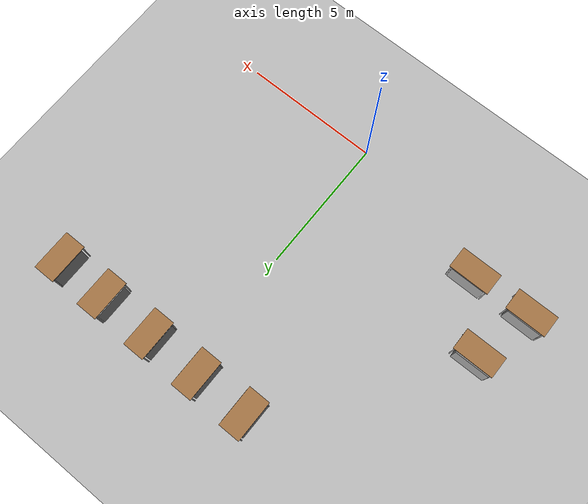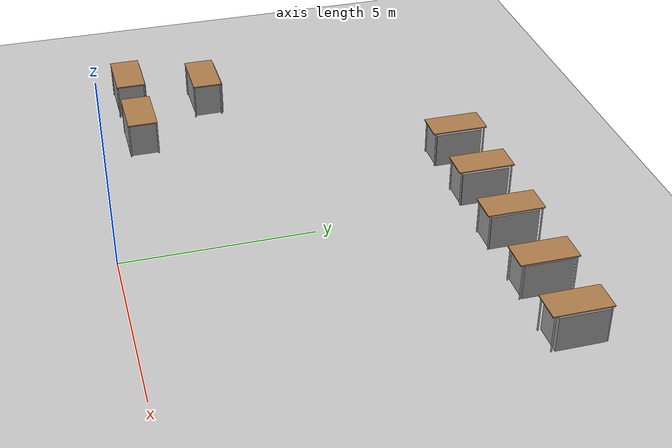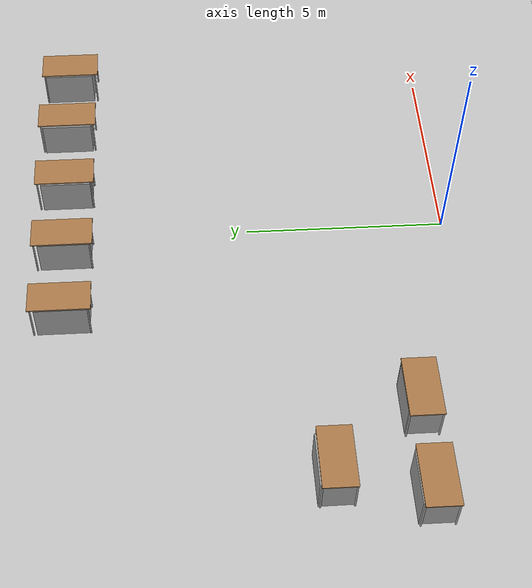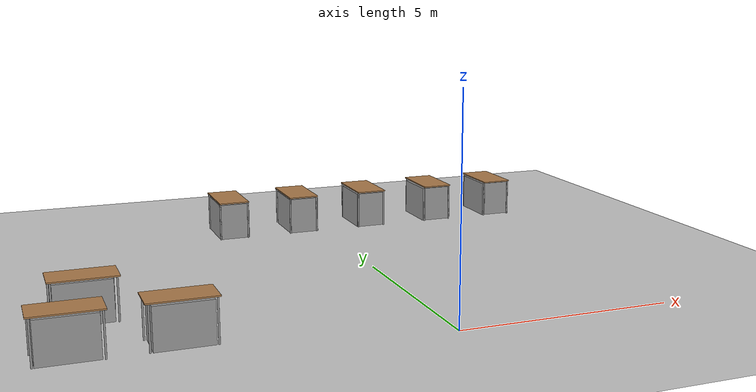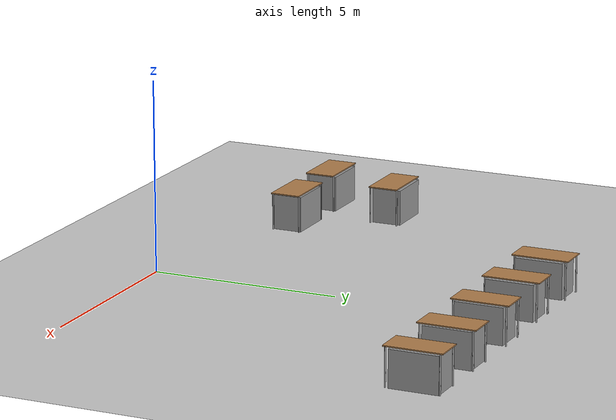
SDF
<sdf version="1.6">
 <world name="default">
  <model name="ground_plane">
   <static>1</static>
   <link name="link">
    <collision name="collision">
     <geometry><plane><normal>0 0 1</normal><size>100 100</size></plane></geometry>
     <surface>
      <contact><collide_bitmask>65535</collide_bitmask></contact>
      <friction><ode><mu>100</mu><mu2>50</mu2></ode></friction>
     </surface>
    </collision>
    <visual name="visual">
     <cast_shadows>0</cast_shadows>
     <geometry><plane><normal>0 0 1</normal><size>100 100</size></plane></geometry>
     <material>
      <script><uri>file://media/materials/scripts/gazebo.material</uri><name>Gazebo/Grey</name></script>
     </material>
    </visual>
   </link>
  </model>
  <model name="table_clone">
   <static>1</static>
   <link name="link">
    <collision name="surface">
     <pose>0 0 1 0 -0 0</pose>
     <geometry><box><size>1.5 0.8 0.03</size></box></geometry>
     <surface><friction><ode><mu>0.6</mu><mu2>0.6</mu2></ode></friction></surface>
    </collision>
    <visual name="visual1">
     <pose>0 0 1 0 -0 0</pose>
     <geometry><box><size>1.5 0.8 0.03</size></box></geometry>
     <material>
      <script><uri>file://media/materials/scripts/gazebo.material</uri><name>Gazebo/Wood</name></script>
     </material>
    </visual>
    <collision name="front_left_leg">
     <pose>0.68 0.38 0.5 0 -0 0</pose>
     <geometry><cylinder><radius>0.02</radius><length>1</length></cylinder></geometry>
    </collision>
    <visual name="front_left_leg">
     <pose>0.68 0.38 0.5 0 -0 0</pose>
     <geometry><cylinder><radius>0.02</radius><length>1</length></cylinder></geometry>
     <material>
      <script><uri>file://media/materials/scripts/gazebo.material</uri><name>Gazebo/Grey</name></script>
     </material>
    </visual>
    <collision name="front_right_leg">
     <pose>0.68 -0.38 0.5 0 -0 0</pose>
     <geometry><cylinder><radius>0.02</radius><length>1</length></cylinder></geometry>
    </collision>
    <visual name="front_right_leg">
     <pose>0.68 -0.38 0.5 0 -0 0</pose>
     <geometry><cylinder><radius>0.02</radius><length>1</length></cylinder></geometry>
     <material>
      <script><uri>file://media/materials/scripts/gazebo.material</uri><name>Gazebo/Grey</name></script>
     </material>
    </visual>
    <collision name="back_right_leg">
     <pose>-0.68 -0.38 0.5 0 -0 0</pose>
     <geometry><cylinder><radius>0.02</radius><length>1</length></cylinder></geometry>
    </collision>
    <visual name="back_right_leg">
     <pose>-0.68 -0.38 0.5 0 -0 0</pose>
     <geometry><cylinder><radius>0.02</radius><length>1</length></cylinder></geometry>
     <material>
      <script><uri>file://media/materials/scripts/gazebo.material</uri><name>Gazebo/Grey</name></script>
     </material>
    </visual>
    <collision name="back_left_leg">
     <pose>-0.68 0.38 0.5 0 -0 0</pose>
     <geometry><cylinder><radius>0.02</radius><length>1</length></cylinder></geometry>
    </collision>
    <visual name="back_left_leg">
     <pose>-0.68 0.38 0.5 0 -0 0</pose>
     <geometry><cylinder><radius>0.02</radius><length>1</length></cylinder></geometry>
     <material>
      <script><uri>file://media/materials/scripts/gazebo.material</uri><name>Gazebo/Grey</name></script>
     </material>
    </visual>
   </link>
   <pose>5.36982 9.5628 0 0 0 -1.57</pose>
  </model>
  <model name="table_clone_0">
   <static>1</static>
   <link name="link">
    <collision name="surface">
     <pose>0 0 1 0 -0 0</pose>
     <geometry><box><size>1.5 0.8 0.03</size></box></geometry>
     <surface><friction><ode><mu>0.6</mu><mu2>0.6</mu2></ode></friction></surface>
    </collision>
    <visual name="visual1">
     <pose>0 0 1 0 -0 0</pose>
     <geometry><box><size>1.5 0.8 0.03</size></box></geometry>
     <material>
      <script><uri>file://media/materials/scripts/gazebo.material</uri><name>Gazebo/Wood</name></script>
     </material>
    </visual>
    <collision name="front_left_leg">
     <pose>0.68 0.38 0.5 0 -0 0</pose>
     <geometry><cylinder><radius>0.02</radius><length>1</length></cylinder></geometry>
    </collision>
    <visual name="front_left_leg">
     <pose>0.68 0.38 0.5 0 -0 0</pose>
     <geometry><cylinder><radius>0.02</radius><length>1</length></cylinder></geometry>
     <material>
      <script><uri>file://media/materials/scripts/gazebo.material</uri><name>Gazebo/Grey</name></script>
     </material>
    </visual>
    <collision name="front_right_leg">
     <pose>0.68 -0.38 0.5 0 -0 0</pose>
     <geometry><cylinder><radius>0.02</radius><length>1</length></cylinder></geometry>
    </collision>
    <visual name="front_right_leg">
     <pose>0.68 -0.38 0.5 0 -0 0</pose>
     <geometry><cylinder><radius>0.02</radius><length>1</length></cylinder></geometry>
     <material>
      <script><uri>file://media/materials/scripts/gazebo.material</uri><name>Gazebo/Grey</name></script>
     </material>
    </visual>
    <collision name="back_right_leg">
     <pose>-0.68 -0.38 0.5 0 -0 0</pose>
     <geometry><cylinder><radius>0.02</radius><length>1</length></cylinder></geometry>
    </collision>
    <visual name="back_right_leg">
     <pose>-0.68 -0.38 0.5 0 -0 0</pose>
     <geometry><cylinder><radius>0.02</radius><length>1</length></cylinder></geometry>
     <material>
      <script><uri>file://media/materials/scripts/gazebo.material</uri><name>Gazebo/Grey</name></script>
     </material>
    </visual>
    <collision name="back_left_leg">
     <pose>-0.68 0.38 0.5 0 -0 0</pose>
     <geometry><cylinder><radius>0.02</radius><length>1</length></cylinder></geometry>
    </collision>
    <visual name="back_left_leg">
     <pose>-0.68 0.38 0.5 0 -0 0</pose>
     <geometry><cylinder><radius>0.02</radius><length>1</length></cylinder></geometry>
     <material>
      <script><uri>file://media/materials/scripts/gazebo.material</uri><name>Gazebo/Grey</name></script>
     </material>
    </visual>
   </link>
   <pose>3.47417 9.59504 0 0 0 -1.57</pose>
  </model>
  <model name="table_clone_1">
   <static>1</static>
   <link name="link">
    <collision name="surface">
     <pose>0 0 1 0 -0 0</pose>
     <geometry><box><size>1.5 0.8 0.03</size></box></geometry>
     <surface><friction><ode><mu>0.6</mu><mu2>0.6</mu2></ode></friction></surface>
    </collision>
    <visual name="visual1">
     <pose>0 0 1 0 -0 0</pose>
     <geometry><box><size>1.5 0.8 0.03</size></box></geometry>
     <material>
      <script><uri>file://media/materials/scripts/gazebo.material</uri><name>Gazebo/Wood</name></script>
     </material>
    </visual>
    <collision name="front_left_leg">
     <pose>0.68 0.38 0.5 0 -0 0</pose>
     <geometry><cylinder><radius>0.02</radius><length>1</length></cylinder></geometry>
    </collision>
    <visual name="front_left_leg">
     <pose>0.68 0.38 0.5 0 -0 0</pose>
     <geometry><cylinder><radius>0.02</radius><length>1</length></cylinder></geometry>
     <material>
      <script><uri>file://media/materials/scripts/gazebo.material</uri><name>Gazebo/Grey</name></script>
     </material>
    </visual>
    <collision name="front_right_leg">
     <pose>0.68 -0.38 0.5 0 -0 0</pose>
     <geometry><cylinder><radius>0.02</radius><length>1</length></cylinder></geometry>
    </collision>
    <visual name="front_right_leg">
     <pose>0.68 -0.38 0.5 0 -0 0</pose>
     <geometry><cylinder><radius>0.02</radius><length>1</length></cylinder></geometry>
     <material>
      <script><uri>file://media/materials/scripts/gazebo.material</uri><name>Gazebo/Grey</name></script>
     </material>
    </visual>
    <collision name="back_right_leg">
     <pose>-0.68 -0.38 0.5 0 -0 0</pose>
     <geometry><cylinder><radius>0.02</radius><length>1</length></cylinder></geometry>
    </collision>
    <visual name="back_right_leg">
     <pose>-0.68 -0.38 0.5 0 -0 0</pose>
     <geometry><cylinder><radius>0.02</radius><length>1</length></cylinder></geometry>
     <material>
      <script><uri>file://media/materials/scripts/gazebo.material</uri><name>Gazebo/Grey</name></script>
     </material>
    </visual>
    <collision name="back_left_leg">
     <pose>-0.68 0.38 0.5 0 -0 0</pose>
     <geometry><cylinder><radius>0.02</radius><length>1</length></cylinder></geometry>
    </collision>
    <visual name="back_left_leg">
     <pose>-0.68 0.38 0.5 0 -0 0</pose>
     <geometry><cylinder><radius>0.02</radius><length>1</length></cylinder></geometry>
     <material>
      <script><uri>file://media/materials/scripts/gazebo.material</uri><name>Gazebo/Grey</name></script>
     </material>
    </visual>
   </link>
   <pose>1.43565 9.59938 0 0 0 -1.57</pose>
  </model>
  <model name="table_clone_2">
   <static>1</static>
   <link name="link">
    <collision name="surface">
     <pose>0 0 1 0 -0 0</pose>
     <geometry><box><size>1.5 0.8 0.03</size></box></geometry>
     <surface><friction><ode><mu>0.6</mu><mu2>0.6</mu2></ode></friction></surface>
    </collision>
    <visual name="visual1">
     <pose>0 0 1 0 -0 0</pose>
     <geometry><box><size>1.5 0.8 0.03</size></box></geometry>
     <material>
      <script><uri>file://media/materials/scripts/gazebo.material</uri><name>Gazebo/Wood</name></script>
     </material>
    </visual>
    <collision name="front_left_leg">
     <pose>0.68 0.38 0.5 0 -0 0</pose>
     <geometry><cylinder><radius>0.02</radius><length>1</length></cylinder></geometry>
    </collision>
    <visual name="front_left_leg">
     <pose>0.68 0.38 0.5 0 -0 0</pose>
     <geometry><cylinder><radius>0.02</radius><length>1</length></cylinder></geometry>
     <material>
      <script><uri>file://media/materials/scripts/gazebo.material</uri><name>Gazebo/Grey</name></script>
     </material>
    </visual>
    <collision name="front_right_leg">
     <pose>0.68 -0.38 0.5 0 -0 0</pose>
     <geometry><cylinder><radius>0.02</radius><length>1</length></cylinder></geometry>
    </collision>
    <visual name="front_right_leg">
     <pose>0.68 -0.38 0.5 0 -0 0</pose>
     <geometry><cylinder><radius>0.02</radius><length>1</length></cylinder></geometry>
     <material>
      <script><uri>file://media/materials/scripts/gazebo.material</uri><name>Gazebo/Grey</name></script>
     </material>
    </visual>
    <collision name="back_right_leg">
     <pose>-0.68 -0.38 0.5 0 -0 0</pose>
     <geometry><cylinder><radius>0.02</radius><length>1</length></cylinder></geometry>
    </collision>
    <visual name="back_right_leg">
     <pose>-0.68 -0.38 0.5 0 -0 0</pose>
     <geometry><cylinder><radius>0.02</radius><length>1</length></cylinder></geometry>
     <material>
      <script><uri>file://media/materials/scripts/gazebo.material</uri><name>Gazebo/Grey</name></script>
     </material>
    </visual>
    <collision name="back_left_leg">
     <pose>-0.68 0.38 0.5 0 -0 0</pose>
     <geometry><cylinder><radius>0.02</radius><length>1</length></cylinder></geometry>
    </collision>
    <visual name="back_left_leg">
     <pose>-0.68 0.38 0.5 0 -0 0</pose>
     <geometry><cylinder><radius>0.02</radius><length>1</length></cylinder></geometry>
     <material>
      <script><uri>file://media/materials/scripts/gazebo.material</uri><name>Gazebo/Grey</name></script>
     </material>
    </visual>
   </link>
   <pose>-0.563458 9.59911 0 0 0 -1.57</pose>
  </model>
  <model name="table_clone_3">
   <static>1</static>
   <link name="link">
    <collision name="surface">
     <pose>0 0 1 0 -0 0</pose>
     <geometry><box><size>1.5 0.8 0.03</size></box></geometry>
     <surface><friction><ode><mu>0.6</mu><mu2>0.6</mu2></ode></friction></surface>
    </collision>
    <visual name="visual1">
     <pose>0 0 1 0 -0 0</pose>
     <geometry><box><size>1.5 0.8 0.03</size></box></geometry>
     <material>
      <script><uri>file://media/materials/scripts/gazebo.material</uri><name>Gazebo/Wood</name></script>
     </material>
    </visual>
    <collision name="front_left_leg">
     <pose>0.68 0.38 0.5 0 -0 0</pose>
     <geometry><cylinder><radius>0.02</radius><length>1</length></cylinder></geometry>
    </collision>
    <visual name="front_left_leg">
     <pose>0.68 0.38 0.5 0 -0 0</pose>
     <geometry><cylinder><radius>0.02</radius><length>1</length></cylinder></geometry>
     <material>
      <script><uri>file://media/materials/scripts/gazebo.material</uri><name>Gazebo/Grey</name></script>
     </material>
    </visual>
    <collision name="front_right_leg">
     <pose>0.68 -0.38 0.5 0 -0 0</pose>
     <geometry><cylinder><radius>0.02</radius><length>1</length></cylinder></geometry>
    </collision>
    <visual name="front_right_leg">
     <pose>0.68 -0.38 0.5 0 -0 0</pose>
     <geometry><cylinder><radius>0.02</radius><length>1</length></cylinder></geometry>
     <material>
      <script><uri>file://media/materials/scripts/gazebo.material</uri><name>Gazebo/Grey</name></script>
     </material>
    </visual>
    <collision name="back_right_leg">
     <pose>-0.68 -0.38 0.5 0 -0 0</pose>
     <geometry><cylinder><radius>0.02</radius><length>1</length></cylinder></geometry>
    </collision>
    <visual name="back_right_leg">
     <pose>-0.68 -0.38 0.5 0 -0 0</pose>
     <geometry><cylinder><radius>0.02</radius><length>1</length></cylinder></geometry>
     <material>
      <script><uri>file://media/materials/scripts/gazebo.material</uri><name>Gazebo/Grey</name></script>
     </material>
    </visual>
    <collision name="back_left_leg">
     <pose>-0.68 0.38 0.5 0 -0 0</pose>
     <geometry><cylinder><radius>0.02</radius><length>1</length></cylinder></geometry>
    </collision>
    <visual name="back_left_leg">
     <pose>-0.68 0.38 0.5 0 -0 0</pose>
     <geometry><cylinder><radius>0.02</radius><length>1</length></cylinder></geometry>
     <material>
      <script><uri>file://media/materials/scripts/gazebo.material</uri><name>Gazebo/Grey</name></script>
     </material>
    </visual>
   </link>
   <pose>-2.5236 9.5957 0 0 0 -1.57</pose>
  </model>
  <model name="table">
   <static>1</static>
   <link name="link">
    <collision name="surface">
     <pose>0 0 1 0 -0 0</pose>
     <geometry><box><size>1.5 0.8 0.03</size></box></geometry>
     <surface><friction><ode><mu>0.6</mu><mu2>0.6</mu2></ode></friction></surface>
    </collision>
    <visual name="visual1">
     <pose>0 0 1 0 -0 0</pose>
     <geometry><box><size>1.5 0.8 0.03</size></box></geometry>
     <material>
      <script><uri>file://media/materials/scripts/gazebo.material</uri><name>Gazebo/Wood</name></script>
     </material>
    </visual>
    <collision name="front_left_leg">
     <pose>0.68 0.38 0.5 0 -0 0</pose>
     <geometry><cylinder><radius>0.02</radius><length>1</length></cylinder></geometry>
    </collision>
    <visual name="front_left_leg">
     <pose>0.68 0.38 0.5 0 -0 0</pose>
     <geometry><cylinder><radius>0.02</radius><length>1</length></cylinder></geometry>
     <material>
      <script><uri>file://media/materials/scripts/gazebo.material</uri><name>Gazebo/Grey</name></script>
     </material>
    </visual>
    <collision name="front_right_leg">
     <pose>0.68 -0.38 0.5 0 -0 0</pose>
     <geometry><cylinder><radius>0.02</radius><length>1</length></cylinder></geometry>
    </collision>
    <visual name="front_right_leg">
     <pose>0.68 -0.38 0.5 0 -0 0</pose>
     <geometry><cylinder><radius>0.02</radius><length>1</length></cylinder></geometry>
     <material>
      <script><uri>file://media/materials/scripts/gazebo.material</uri><name>Gazebo/Grey</name></script>
     </material>
    </visual>
    <collision name="back_right_leg">
     <pose>-0.68 -0.38 0.5 0 -0 0</pose>
     <geometry><cylinder><radius>0.02</radius><length>1</length></cylinder></geometry>
    </collision>
    <visual name="back_right_leg">
     <pose>-0.68 -0.38 0.5 0 -0 0</pose>
     <geometry><cylinder><radius>0.02</radius><length>1</length></cylinder></geometry>
     <material>
      <script><uri>file://media/materials/scripts/gazebo.material</uri><name>Gazebo/Grey</name></script>
     </material>
    </visual>
    <collision name="back_left_leg">
     <pose>-0.68 0.38 0.5 0 -0 0</pose>
     <geometry><cylinder><radius>0.02</radius><length>1</length></cylinder></geometry>
    </collision>
    <visual name="back_left_leg">
     <pose>-0.68 0.38 0.5 0 -0 0</pose>
     <geometry><cylinder><radius>0.02</radius><length>1</length></cylinder></geometry>
     <material>
      <script><uri>file://media/materials/scripts/gazebo.material</uri><name>Gazebo/Grey</name></script>
     </material>
    </visual>
   </link>
   <pose>-7.63732 1.38708 0 0 -0 0</pose>
  </model>
  <model name="table_clone_4">
   <static>1</static>
   <link name="link">
    <collision name="surface">
     <pose>0 0 1 0 -0 0</pose>
     <geometry><box><size>1.5 0.8 0.03</size></box></geometry>
     <surface><friction><ode><mu>0.6</mu><mu2>0.6</mu2></ode></friction></surface>
    </collision>
    <visual name="visual1">
     <pose>0 0 1 0 -0 0</pose>
     <geometry><box><size>1.5 0.8 0.03</size></box></geometry>
     <material>
      <script><uri>file://media/materials/scripts/gazebo.material</uri><name>Gazebo/Wood</name></script>
     </material>
    </visual>
    <collision name="front_left_leg">
     <pose>0.68 0.38 0.5 0 -0 0</pose>
     <geometry><cylinder><radius>0.02</radius><length>1</length></cylinder></geometry>
    </collision>
    <visual name="front_left_leg">
     <pose>0.68 0.38 0.5 0 -0 0</pose>
     <geometry><cylinder><radius>0.02</radius><length>1</length></cylinder></geometry>
     <material>
      <script><uri>file://media/materials/scripts/gazebo.material</uri><name>Gazebo/Grey</name></script>
     </material>
    </visual>
    <collision name="front_right_leg">
     <pose>0.68 -0.38 0.5 0 -0 0</pose>
     <geometry><cylinder><radius>0.02</radius><length>1</length></cylinder></geometry>
    </collision>
    <visual name="front_right_leg">
     <pose>0.68 -0.38 0.5 0 -0 0</pose>
     <geometry><cylinder><radius>0.02</radius><length>1</length></cylinder></geometry>
     <material>
      <script><uri>file://media/materials/scripts/gazebo.material</uri><name>Gazebo/Grey</name></script>
     </material>
    </visual>
    <collision name="back_right_leg">
     <pose>-0.68 -0.38 0.5 0 -0 0</pose>
     <geometry><cylinder><radius>0.02</radius><length>1</length></cylinder></geometry>
    </collision>
    <visual name="back_right_leg">
     <pose>-0.68 -0.38 0.5 0 -0 0</pose>
     <geometry><cylinder><radius>0.02</radius><length>1</length></cylinder></geometry>
     <material>
      <script><uri>file://media/materials/scripts/gazebo.material</uri><name>Gazebo/Grey</name></script>
     </material>
    </visual>
    <collision name="back_left_leg">
     <pose>-0.68 0.38 0.5 0 -0 0</pose>
     <geometry><cylinder><radius>0.02</radius><length>1</length></cylinder></geometry>
    </collision>
    <visual name="back_left_leg">
     <pose>-0.68 0.38 0.5 0 -0 0</pose>
     <geometry><cylinder><radius>0.02</radius><length>1</length></cylinder></geometry>
     <material>
      <script><uri>file://media/materials/scripts/gazebo.material</uri><name>Gazebo/Grey</name></script>
     </material>
    </visual>
   </link>
   <pose>-5.43848 1.40059 0 0 -0 0</pose>
  </model>
  <model name="table_clone_11">
   <static>1</static>
   <link name="link">
    <collision name="surface">
     <pose>0 0 1 0 -0 0</pose>
     <geometry><box><size>1.5 0.8 0.03</size></box></geometry>
     <surface><friction><ode><mu>0.6</mu><mu2>0.6</mu2></ode></friction></surface>
    </collision>
    <visual name="visual1">
     <pose>0 0 1 0 -0 0</pose>
     <geometry><box><size>1.5 0.8 0.03</size></box></geometry>
     <material>
      <script><uri>file://media/materials/scripts/gazebo.material</uri><name>Gazebo/Wood</name></script>
     </material>
    </visual>
    <collision name="front_left_leg">
     <pose>0.68 0.38 0.5 0 -0 0</pose>
     <geometry><cylinder><radius>0.02</radius><length>1</length></cylinder></geometry>
    </collision>
    <visual name="front_left_leg">
     <pose>0.68 0.38 0.5 0 -0 0</pose>
     <geometry><cylinder><radius>0.02</radius><length>1</length></cylinder></geometry>
     <material>
      <script><uri>file://media/materials/scripts/gazebo.material</uri><name>Gazebo/Grey</name></script>
     </material>
    </visual>
    <collision name="front_right_leg">
     <pose>0.68 -0.38 0.5 0 -0 0</pose>
     <geometry><cylinder><radius>0.02</radius><length>1</length></cylinder></geometry>
    </collision>
    <visual name="front_right_leg">
     <pose>0.68 -0.38 0.5 0 -0 0</pose>
     <geometry><cylinder><radius>0.02</radius><length>1</length></cylinder></geometry>
     <material>
      <script><uri>file://media/materials/scripts/gazebo.material</uri><name>Gazebo/Grey</name></script>
     </material>
    </visual>
    <collision name="back_right_leg">
     <pose>-0.68 -0.38 0.5 0 -0 0</pose>
     <geometry><cylinder><radius>0.02</radius><length>1</length></cylinder></geometry>
    </collision>
    <visual name="back_right_leg">
     <pose>-0.68 -0.38 0.5 0 -0 0</pose>
     <geometry><cylinder><radius>0.02</radius><length>1</length></cylinder></geometry>
     <material>
      <script><uri>file://media/materials/scripts/gazebo.material</uri><name>Gazebo/Grey</name></script>
     </material>
    </visual>
    <collision name="back_left_leg">
     <pose>-0.68 0.38 0.5 0 -0 0</pose>
     <geometry><cylinder><radius>0.02</radius><length>1</length></cylinder></geometry>
    </collision>
    <visual name="back_left_leg">
     <pose>-0.68 0.38 0.5 0 -0 0</pose>
     <geometry><cylinder><radius>0.02</radius><length>1</length></cylinder></geometry>
     <material>
      <script><uri>file://media/materials/scripts/gazebo.material</uri><name>Gazebo/Grey</name></script>
     </material>
    </visual>
   </link>
   <pose>-7.08899 3.49444 0 0 -0 0</pose>
  </model>
  <model name="unit_box_clone_3">
   <pose>-5.43356 1.40686 0.47249 0 -0 2e-05</pose>
   <link name="link">
    <inertial>
     <mass>1</mass>
     <inertia>
      <ixx>0.166667</ixx>
      <ixy>0</ixy>
      <ixz>0</ixz>
      <iyy>0.166667</iyy>
      <iyz>0</iyz>
      <izz>0.166667</izz>
     </inertia>
    </inertial>
    <collision name="collision"><geometry><box><size>1.26024 0.79892 0.944981</size></box></geometry></collision>
    <visual name="visual">
     <geometry><box><size>1.26024 0.79892 0.944981</size></box></geometry>
     <material>
      <script><name>Gazebo/Grey</name><uri>file://media/materials/scripts/gazebo.material</uri></script>
     </material>
    </visual>
   </link>
  </model>
  <model name="unit_box_clone_4">
   <pose>-7.64615 1.41043 0.47249 0 -0 2e-05</pose>
   <link name="link">
    <inertial>
     <mass>1</mass>
     <inertia>
      <ixx>0.166667</ixx>
      <ixy>0</ixy>
      <ixz>0</ixz>
      <iyy>0.166667</iyy>
      <iyz>0</iyz>
      <izz>0.166667</izz>
     </inertia>
    </inertial>
    <collision name="collision"><geometry><box><size>1.26024 0.79892 0.944981</size></box></geometry></collision>
    <visual name="visual">
     <geometry><box><size>1.26024 0.79892 0.944981</size></box></geometry>
     <material>
      <script><name>Gazebo/Grey</name><uri>file://media/materials/scripts/gazebo.material</uri></script>
     </material>
    </visual>
   </link>
  </model>
  <model name="unit_box_clone_5">
   <pose>-7.11615 3.53329 0.472486 -8e-06 1e-06 0.007674</pose>
   <link name="link">
    <inertial>
     <mass>1</mass>
     <inertia>
      <ixx>0.166667</ixx>
      <ixy>0</ixy>
      <ixz>0</ixz>
      <iyy>0.166667</iyy>
      <iyz>0</iyz>
      <izz>0.166667</izz>
     </inertia>
    </inertial>
    <collision name="collision"><geometry><box><size>1.26024 0.79892 0.944981</size></box></geometry></collision>
    <visual name="visual">
     <geometry><box><size>1.26024 0.79892 0.944981</size></box></geometry>
     <material>
      <script><name>Gazebo/Grey</name><uri>file://media/materials/scripts/gazebo.material</uri></script>
     </material>
    </visual>
   </link>
  </model>
  <model name="unit_box_clone_7">
   <pose>5.37433 9.59268 0.47249 0 0 -1.57</pose>
   <link name="link">
    <inertial>
     <mass>1</mass>
     <inertia>
      <ixx>0.166667</ixx>
      <ixy>0</ixy>
      <ixz>0</ixz>
      <iyy>0.166667</iyy>
      <iyz>0</iyz>
      <izz>0.166667</izz>
     </inertia>
    </inertial>
    <collision name="collision"><geometry><box><size>1.26024 0.79892 0.944981</size></box></geometry></collision>
    <visual name="visual">
     <geometry><box><size>1.26024 0.79892 0.944981</size></box></geometry>
     <material>
      <script><name>Gazebo/Grey</name><uri>file://media/materials/scripts/gazebo.material</uri></script>
     </material>
    </visual>
   </link>
  </model>
  <model name="unit_box_clone_7_clone">
   <pose>3.45659 9.60065 0.47249 0 0 -1.57</pose>
   <link name="link">
    <inertial>
     <mass>1</mass>
     <inertia>
      <ixx>0.166667</ixx>
      <ixy>0</ixy>
      <ixz>0</ixz>
      <iyy>0.166667</iyy>
      <iyz>0</iyz>
      <izz>0.166667</izz>
     </inertia>
    </inertial>
    <collision name="collision"><geometry><box><size>1.26024 0.79892 0.944981</size></box></geometry></collision>
    <visual name="visual">
     <geometry><box><size>1.26024 0.79892 0.944981</size></box></geometry>
     <material>
      <script><name>Gazebo/Grey</name><uri>file://media/materials/scripts/gazebo.material</uri></script>
     </material>
    </visual>
   </link>
  </model>
  <model name="unit_box_clone_7_clone_0">
   <pose>1.42972 9.57434 0.472491 0 0 -1.57</pose>
   <link name="link">
    <inertial>
     <mass>1</mass>
     <inertia>
      <ixx>0.166667</ixx>
      <ixy>0</ixy>
      <ixz>0</ixz>
      <iyy>0.166667</iyy>
      <iyz>0</iyz>
      <izz>0.166667</izz>
     </inertia>
    </inertial>
    <collision name="collision"><geometry><box><size>1.26024 0.79892 0.944981</size></box></geometry></collision>
    <visual name="visual">
     <geometry><box><size>1.26024 0.79892 0.944981</size></box></geometry>
     <material>
      <script><name>Gazebo/Grey</name><uri>file://media/materials/scripts/gazebo.material</uri></script>
     </material>
    </visual>
   </link>
  </model>
  <model name="unit_box_clone_7_clone_1">
   <pose>-0.54696 9.56925 0.472491 0 0 -1.57001</pose>
   <link name="link">
    <inertial>
     <mass>1</mass>
     <inertia>
      <ixx>0.166667</ixx>
      <ixy>0</ixy>
      <ixz>0</ixz>
      <iyy>0.166667</iyy>
      <iyz>0</iyz>
      <izz>0.166667</izz>
     </inertia>
    </inertial>
    <collision name="collision"><geometry><box><size>1.26024 0.79892 0.944981</size></box></geometry></collision>
    <visual name="visual">
     <geometry><box><size>1.26024 0.79892 0.944981</size></box></geometry>
     <material>
      <script><name>Gazebo/Grey</name><uri>file://media/materials/scripts/gazebo.material</uri></script>
     </material>
    </visual>
   </link>
  </model>
  <model name="unit_box_clone_7_clone_2">
   <pose>-2.50925 9.56584 0.47249 0 0 -1.57001</pose>
   <link name="link">
    <inertial>
     <mass>1</mass>
     <inertia>
      <ixx>0.166667</ixx>
      <ixy>0</ixy>
      <ixz>0</ixz>
      <iyy>0.166667</iyy>
      <iyz>0</iyz>
      <izz>0.166667</izz>
     </inertia>
    </inertial>
    <collision name="collision"><geometry><box><size>1.26024 0.79892 0.944981</size></box></geometry></collision>
    <visual name="visual">
     <geometry><box><size>1.26024 0.79892 0.944981</size></box></geometry>
     <material>
      <script><name>Gazebo/Grey</name><uri>file://media/materials/scripts/gazebo.material</uri></script>
     </material>
    </visual>
   </link>
  </model>
 </world>
</sdf>
